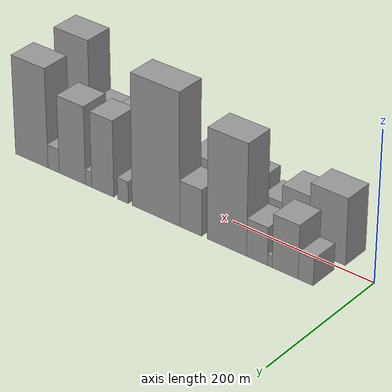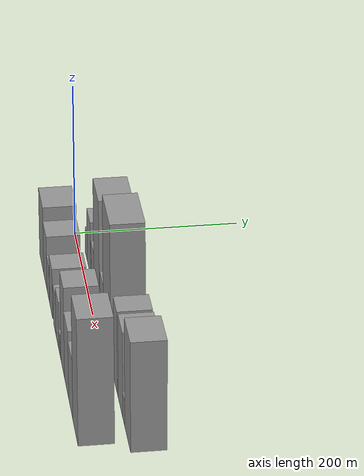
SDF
<sdf version="1.6">
 <world name="default">
  <scene>
   <sky><clouds><speed>12</speed></clouds></sky>
   <ambient>0.4 0.4 0.4 1</ambient>
   <background>0.7 0.7 0.7 1</background>
   <shadows>1</shadows>
  </scene>
  <gravity>0 0 -9.8066</gravity>
  <magnetic_field>6e-06 2.3e-05 -4.2e-05</magnetic_field>
  <physics default="0" name="default_physics" type="ode">
   <ode>
    <solver>
     <type>quick</type>
     <iters>10</iters>
     <sor>1.0</sor>
     <use_dynamic_moi_rescaling>0</use_dynamic_moi_rescaling>
    </solver>
    <constraints>
     <cfm>0</cfm>
     <erp>0.2</erp>
     <contact_max_correcting_vel>100</contact_max_correcting_vel>
     <contact_surface_layer>0.001</contact_surface_layer>
    </constraints>
   </ode>
   <max_step_size>0.004</max_step_size>
   <real_time_factor>1</real_time_factor>
   <real_time_update_rate>250</real_time_update_rate>
  </physics>
  <light name="sun" type="directional">
   <pose>0 0 10 0 0 0</pose>
   <diffuse>0.8 0.8 0.8 1</diffuse>
   <specular>0.2 0.2 0.2 1</specular>
   <attenuation>
    <range>1000</range>
    <constant>0.9</constant>
    <linear>0.01</linear>
    <quadratic>0.001</quadratic>
   </attenuation>
   <direction>-0.5 0.1 -0.9</direction>
  </light>
  <model name="building_1">
   <static>1</static>
   <pose>60.4046 27.5000 0 0.000000 0.000000 1.570796</pose>
   <link name="link">
    <pose>0 0 18.00 0 0 0</pose>
    <collision name="collision"><geometry><box><size>40.0000 20.8093 36.0000</size></box></geometry></collision>
    <visual name="visual">
     <cast_shadows>0</cast_shadows>
     <geometry><box><size>40.0000 20.8093 36.0000</size></box></geometry>
     <material>
      <script>
       <uri>model://grey_wall/materials/scripts</uri>
       <uri>model://grey_wall/materials/textures</uri>
       <name>vrc/grey_wall</name>
      </script>
     </material>
    </visual>
   </link>
  </model>
  <model name="building_2">
   <static>1</static>
   <pose>89.0843 27.5000 0 0.000000 0.000000 1.570796</pose>
   <link name="link">
    <pose>0 0 36.00 0 0 0</pose>
    <collision name="collision"><geometry><box><size>40.0000 36.5500 72.0000</size></box></geometry></collision>
    <visual name="visual">
     <cast_shadows>0</cast_shadows>
     <geometry><box><size>40.0000 36.5500 72.0000</size></box></geometry>
     <material>
      <script>
       <uri>model://grey_wall/materials/scripts</uri>
       <uri>model://grey_wall/materials/textures</uri>
       <name>vrc/grey_wall</name>
      </script>
     </material>
    </visual>
   </link>
  </model>
  <model name="building_3">
   <static>1</static>
   <pose>110.6040 27.5000 0 0.000000 0.000000 1.570796</pose>
   <link name="link">
    <pose>0 0 7.50 0 0 0</pose>
    <collision name="collision"><geometry><box><size>40.0000 6.4895 15.0000</size></box></geometry></collision>
    <visual name="visual">
     <cast_shadows>0</cast_shadows>
     <geometry><box><size>40.0000 6.4895 15.0000</size></box></geometry>
     <material>
      <script>
       <uri>model://grey_wall/materials/scripts</uri>
       <uri>model://grey_wall/materials/textures</uri>
       <name>vrc/grey_wall</name>
      </script>
     </material>
    </visual>
   </link>
  </model>
  <model name="building_4">
   <static>1</static>
   <pose>128.7569 27.5000 0 0.000000 0.000000 1.570796</pose>
   <link name="link">
    <pose>0 0 25.50 0 0 0</pose>
    <collision name="collision"><geometry><box><size>40.0000 29.8163 51.0000</size></box></geometry></collision>
    <visual name="visual">
     <cast_shadows>0</cast_shadows>
     <geometry><box><size>40.0000 29.8163 51.0000</size></box></geometry>
     <material>
      <script>
       <uri>model://grey_wall/materials/scripts</uri>
       <uri>model://grey_wall/materials/textures</uri>
       <name>vrc/grey_wall</name>
      </script>
     </material>
    </visual>
   </link>
  </model>
  <model name="building_5">
   <static>1</static>
   <pose>172.2235 27.5000 0 0.000000 0.000000 1.570796</pose>
   <link name="link">
    <pose>0 0 75.00 0 0 0</pose>
    <collision name="collision"><geometry><box><size>40.0000 57.1169 150.0000</size></box></geometry></collision>
    <visual name="visual">
     <cast_shadows>0</cast_shadows>
     <geometry><box><size>40.0000 57.1169 150.0000</size></box></geometry>
     <material>
      <script>
       <uri>model://grey_wall/materials/scripts</uri>
       <uri>model://grey_wall/materials/textures</uri>
       <name>vrc/grey_wall</name>
      </script>
     </material>
    </visual>
   </link>
  </model>
  <model name="building_6">
   <static>1</static>
   <pose>225.2234 27.5000 0 0.000000 0.000000 1.570796</pose>
   <link name="link">
    <pose>0 0 31.50 0 0 0</pose>
    <collision name="collision"><geometry><box><size>40.0000 32.8828 63.0000</size></box></geometry></collision>
    <visual name="visual">
     <cast_shadows>0</cast_shadows>
     <geometry><box><size>40.0000 32.8828 63.0000</size></box></geometry>
     <material>
      <script>
       <uri>model://grey_wall/materials/scripts</uri>
       <uri>model://grey_wall/materials/textures</uri>
       <name>vrc/grey_wall</name>
      </script>
     </material>
    </visual>
   </link>
  </model>
  <model name="building_7">
   <static>1</static>
   <pose>277.6087 27.5000 0 0.000000 0.000000 1.570796</pose>
   <link name="link">
    <pose>0 0 90.00 0 0 0</pose>
    <collision name="collision"><geometry><box><size>40.0000 71.8879 180.0000</size></box></geometry></collision>
    <visual name="visual">
     <cast_shadows>0</cast_shadows>
     <geometry><box><size>40.0000 71.8879 180.0000</size></box></geometry>
     <material>
      <script>
       <uri>model://grey_wall/materials/scripts</uri>
       <uri>model://grey_wall/materials/textures</uri>
       <name>vrc/grey_wall</name>
      </script>
     </material>
    </visual>
   </link>
  </model>
  <model name="building_8">
   <static>1</static>
   <pose>327.7260 27.5000 0 0.000000 0.000000 1.570796</pose>
   <link name="link">
    <pose>0 0 15.00 0 0 0</pose>
    <collision name="collision"><geometry><box><size>40.0000 16.3466 30.0000</size></box></geometry></collision>
    <visual name="visual">
     <cast_shadows>0</cast_shadows>
     <geometry><box><size>40.0000 16.3466 30.0000</size></box></geometry>
     <material>
      <script>
       <uri>model://grey_wall/materials/scripts</uri>
       <uri>model://grey_wall/materials/textures</uri>
       <name>vrc/grey_wall</name>
      </script>
     </material>
    </visual>
   </link>
  </model>
  <model name="building_9">
   <static>1</static>
   <pose>359.2704 27.5000 0 0.000000 0.000000 1.570796</pose>
   <link name="link">
    <pose>0 0 52.50 0 0 0</pose>
    <collision name="collision"><geometry><box><size>40.0000 34.7423 105.0000</size></box></geometry></collision>
    <visual name="visual">
     <cast_shadows>0</cast_shadows>
     <geometry><box><size>40.0000 34.7423 105.0000</size></box></geometry>
     <material>
      <script>
       <uri>model://grey_wall/materials/scripts</uri>
       <uri>model://grey_wall/materials/textures</uri>
       <name>vrc/grey_wall</name>
      </script>
     </material>
    </visual>
   </link>
  </model>
  <model name="building_10">
   <static>1</static>
   <pose>381.4641 27.5000 0 0.000000 0.000000 1.570796</pose>
   <link name="link">
    <pose>0 0 10.50 0 0 0</pose>
    <collision name="collision"><geometry><box><size>40.0000 9.6452 21.0000</size></box></geometry></collision>
    <visual name="visual">
     <cast_shadows>0</cast_shadows>
     <geometry><box><size>40.0000 9.6452 21.0000</size></box></geometry>
     <material>
      <script>
       <uri>model://grey_wall/materials/scripts</uri>
       <uri>model://grey_wall/materials/textures</uri>
       <name>vrc/grey_wall</name>
      </script>
     </material>
    </visual>
   </link>
  </model>
  <model name="building_11">
   <static>1</static>
   <pose>407.2352 27.5000 0 0.000000 0.000000 1.570796</pose>
   <link name="link">
    <pose>0 0 54.00 0 0 0</pose>
    <collision name="collision"><geometry><box><size>40.0000 41.8970 108.0000</size></box></geometry></collision>
    <visual name="visual">
     <cast_shadows>0</cast_shadows>
     <geometry><box><size>40.0000 41.8970 108.0000</size></box></geometry>
     <material>
      <script>
       <uri>model://grey_wall/materials/scripts</uri>
       <uri>model://grey_wall/materials/textures</uri>
       <name>vrc/grey_wall</name>
      </script>
     </material>
    </visual>
   </link>
  </model>
  <model name="building_12">
   <static>1</static>
   <pose>437.2371 27.5000 0 0.000000 0.000000 1.570796</pose>
   <link name="link">
    <pose>0 0 16.50 0 0 0</pose>
    <collision name="collision"><geometry><box><size>40.0000 18.1068 33.0000</size></box></geometry></collision>
    <visual name="visual">
     <cast_shadows>0</cast_shadows>
     <geometry><box><size>40.0000 18.1068 33.0000</size></box></geometry>
     <material>
      <script>
       <uri>model://grey_wall/materials/scripts</uri>
       <uri>model://grey_wall/materials/textures</uri>
       <name>vrc/grey_wall</name>
      </script>
     </material>
    </visual>
   </link>
  </model>
  <model name="building_13">
   <static>1</static>
   <pose>472.8130 27.5000 0 0.000000 0.000000 1.570796</pose>
   <link name="link">
    <pose>0 0 69.00 0 0 0</pose>
    <collision name="collision"><geometry><box><size>40.0000 53.0449 138.0000</size></box></geometry></collision>
    <visual name="visual">
     <cast_shadows>0</cast_shadows>
     <geometry><box><size>40.0000 53.0449 138.0000</size></box></geometry>
     <material>
      <script>
       <uri>model://grey_wall/materials/scripts</uri>
       <uri>model://grey_wall/materials/textures</uri>
       <name>vrc/grey_wall</name>
      </script>
     </material>
    </visual>
   </link>
  </model>
  <model name="building_14">
   <static>1</static>
   <pose>70.7400 -27.5000 0 0.000000 0.000000 1.570796</pose>
   <link name="link">
    <pose>0 0 45.00 0 0 0</pose>
    <collision name="collision"><geometry><box><size>40.0000 51.4800 90.0000</size></box></geometry></collision>
    <visual name="visual">
     <cast_shadows>0</cast_shadows>
     <geometry><box><size>40.0000 51.4800 90.0000</size></box></geometry>
     <material>
      <script>
       <uri>model://grey_wall/materials/scripts</uri>
       <uri>model://grey_wall/materials/textures</uri>
       <name>vrc/grey_wall</name>
      </script>
     </material>
    </visual>
   </link>
  </model>
  <model name="building_15">
   <static>1</static>
   <pose>116.0948 -27.5000 0 0.000000 0.000000 1.570796</pose>
   <link name="link">
    <pose>0 0 36.00 0 0 0</pose>
    <collision name="collision"><geometry><box><size>40.0000 39.2296 72.0000</size></box></geometry></collision>
    <visual name="visual">
     <cast_shadows>0</cast_shadows>
     <geometry><box><size>40.0000 39.2296 72.0000</size></box></geometry>
     <material>
      <script>
       <uri>model://grey_wall/materials/scripts</uri>
       <uri>model://grey_wall/materials/textures</uri>
       <name>vrc/grey_wall</name>
      </script>
     </material>
    </visual>
   </link>
  </model>
  <model name="building_16">
   <static>1</static>
   <pose>149.8241 -27.5000 0 0.000000 0.000000 1.570796</pose>
   <link name="link">
    <pose>0 0 24.00 0 0 0</pose>
    <collision name="collision"><geometry><box><size>40.0000 28.2291 48.0000</size></box></geometry></collision>
    <visual name="visual">
     <cast_shadows>0</cast_shadows>
     <geometry><box><size>40.0000 28.2291 48.0000</size></box></geometry>
     <material>
      <script>
       <uri>model://grey_wall/materials/scripts</uri>
       <uri>model://grey_wall/materials/textures</uri>
       <name>vrc/grey_wall</name>
      </script>
     </material>
    </visual>
   </link>
  </model>
  <model name="building_17">
   <static>1</static>
   <pose>185.4243 -27.5000 0 0.000000 0.000000 1.570796</pose>
   <link name="link">
    <pose>0 0 33.00 0 0 0</pose>
    <collision name="collision"><geometry><box><size>40.0000 34.9711 66.0000</size></box></geometry></collision>
    <visual name="visual">
     <cast_shadows>0</cast_shadows>
     <geometry><box><size>40.0000 34.9711 66.0000</size></box></geometry>
     <material>
      <script>
       <uri>model://grey_wall/materials/scripts</uri>
       <uri>model://grey_wall/materials/textures</uri>
       <name>vrc/grey_wall</name>
      </script>
     </material>
    </visual>
   </link>
  </model>
  <model name="building_18">
   <static>1</static>
   <pose>226.3975 -27.5000 0 0.000000 0.000000 1.570796</pose>
   <link name="link">
    <pose>0 0 25.50 0 0 0</pose>
    <collision name="collision"><geometry><box><size>40.0000 28.9753 51.0000</size></box></geometry></collision>
    <visual name="visual">
     <cast_shadows>0</cast_shadows>
     <geometry><box><size>40.0000 28.9753 51.0000</size></box></geometry>
     <material>
      <script>
       <uri>model://grey_wall/materials/scripts</uri>
       <uri>model://grey_wall/materials/textures</uri>
       <name>vrc/grey_wall</name>
      </script>
     </material>
    </visual>
   </link>
  </model>
  <model name="building_19">
   <static>1</static>
   <pose>257.6047 -27.5000 0 0.000000 0.000000 1.570796</pose>
   <link name="link">
    <pose>0 0 31.50 0 0 0</pose>
    <collision name="collision"><geometry><box><size>40.0000 33.4391 63.0000</size></box></geometry></collision>
    <visual name="visual">
     <cast_shadows>0</cast_shadows>
     <geometry><box><size>40.0000 33.4391 63.0000</size></box></geometry>
     <material>
      <script>
       <uri>model://grey_wall/materials/scripts</uri>
       <uri>model://grey_wall/materials/textures</uri>
       <name>vrc/grey_wall</name>
      </script>
     </material>
    </visual>
   </link>
  </model>
  <model name="building_20">
   <static>1</static>
   <pose>280.6680 -27.5000 0 0.000000 0.000000 1.570796</pose>
   <link name="link">
    <pose>0 0 13.50 0 0 0</pose>
    <collision name="collision"><geometry><box><size>40.0000 12.6874 27.0000</size></box></geometry></collision>
    <visual name="visual">
     <cast_shadows>0</cast_shadows>
     <geometry><box><size>40.0000 12.6874 27.0000</size></box></geometry>
     <material>
      <script>
       <uri>model://grey_wall/materials/scripts</uri>
       <uri>model://grey_wall/materials/textures</uri>
       <name>vrc/grey_wall</name>
      </script>
     </material>
    </visual>
   </link>
  </model>
  <model name="building_21">
   <static>1</static>
   <pose>292.1982 -27.5000 0 0.000000 0.000000 1.570796</pose>
   <link name="link">
    <pose>0 0 10.50 0 0 0</pose>
    <collision name="collision"><geometry><box><size>40.0000 10.3730 21.0000</size></box></geometry></collision>
    <visual name="visual">
     <cast_shadows>0</cast_shadows>
     <geometry><box><size>40.0000 10.3730 21.0000</size></box></geometry>
     <material>
      <script>
       <uri>model://grey_wall/materials/scripts</uri>
       <uri>model://grey_wall/materials/textures</uri>
       <name>vrc/grey_wall</name>
      </script>
     </material>
    </visual>
   </link>
  </model>
  <model name="building_22">
   <static>1</static>
   <pose>317.2066 -27.5000 0 0.000000 0.000000 1.570796</pose>
   <link name="link">
    <pose>0 0 58.50 0 0 0</pose>
    <collision name="collision"><geometry><box><size>40.0000 39.6437 117.0000</size></box></geometry></collision>
    <visual name="visual">
     <cast_shadows>0</cast_shadows>
     <geometry><box><size>40.0000 39.6437 117.0000</size></box></geometry>
     <material>
      <script>
       <uri>model://grey_wall/materials/scripts</uri>
       <uri>model://grey_wall/materials/textures</uri>
       <name>vrc/grey_wall</name>
      </script>
     </material>
    </visual>
   </link>
  </model>
  <model name="building_23">
   <static>1</static>
   <pose>359.2383 -27.5000 0 0.000000 0.000000 1.570796</pose>
   <link name="link">
    <pose>0 0 43.50 0 0 0</pose>
    <collision name="collision"><geometry><box><size>40.0000 44.4196 87.0000</size></box></geometry></collision>
    <visual name="visual">
     <cast_shadows>0</cast_shadows>
     <geometry><box><size>40.0000 44.4196 87.0000</size></box></geometry>
     <material>
      <script>
       <uri>model://grey_wall/materials/scripts</uri>
       <uri>model://grey_wall/materials/textures</uri>
       <name>vrc/grey_wall</name>
      </script>
     </material>
    </visual>
   </link>
  </model>
  <model name="building_24">
   <static>1</static>
   <pose>403.6634 -27.5000 0 0.000000 0.000000 1.570796</pose>
   <link name="link">
    <pose>0 0 37.50 0 0 0</pose>
    <collision name="collision"><geometry><box><size>40.0000 44.4307 75.0000</size></box></geometry></collision>
    <visual name="visual">
     <cast_shadows>0</cast_shadows>
     <geometry><box><size>40.0000 44.4307 75.0000</size></box></geometry>
     <material>
      <script>
       <uri>model://grey_wall/materials/scripts</uri>
       <uri>model://grey_wall/materials/textures</uri>
       <name>vrc/grey_wall</name>
      </script>
     </material>
    </visual>
   </link>
  </model>
  <model name="building_25">
   <static>1</static>
   <pose>452.6194 -27.5000 0 0.000000 0.000000 1.570796</pose>
   <link name="link">
    <pose>0 0 79.50 0 0 0</pose>
    <collision name="collision"><geometry><box><size>40.0000 53.4813 159.0000</size></box></geometry></collision>
    <visual name="visual">
     <cast_shadows>0</cast_shadows>
     <geometry><box><size>40.0000 53.4813 159.0000</size></box></geometry>
     <material>
      <script>
       <uri>model://grey_wall/materials/scripts</uri>
       <uri>model://grey_wall/materials/textures</uri>
       <name>vrc/grey_wall</name>
      </script>
     </material>
    </visual>
   </link>
  </model>
 </world>
</sdf>
